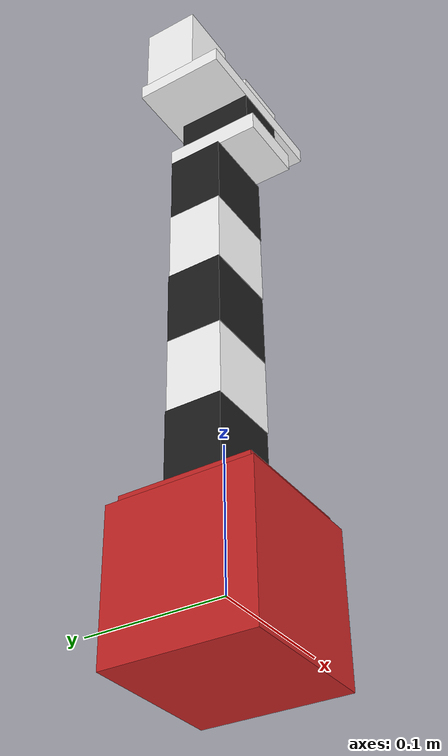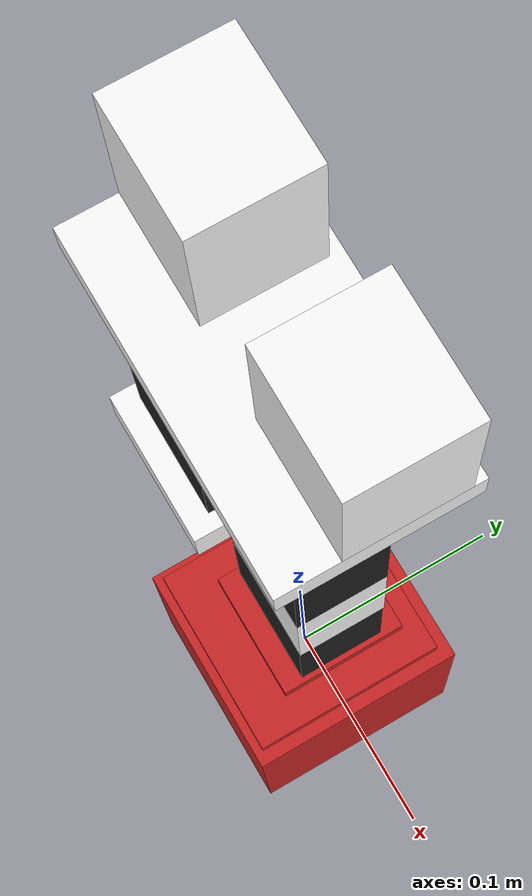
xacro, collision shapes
<?xml version="1.0"?>

<robot name="arm" xmlns:xacro="http://ros.org/wiki/xacro">

  <arg name="hardware_interface" default="PositionJointInterface"/>

  <xacro:include filename="$(find arm_description)/urdf/arm.gazebo.xacro" />

  <xacro:include filename="$(find arm_description)/urdf/arm.transmission.xacro" />

  <xacro:include filename="$(find arm_description)/urdf/camera.xacro" />

  <!-- BASE_ LINK -->
  <link name="base_link">
    <visual>
      <geometry>
        <mesh filename="package://arm_description/meshes/base_link.stl" scale="0.001 0.001 0.001"/>
      </geometry>
      <origin rpy="0 0 0" xyz="0 0 0"/>
    </visual>
    <collision>
      <geometry>
        <box size = "0.1 0.1 0.1" />
      </geometry>
      <origin rpy="0 0 0" xyz="0 0 0"/>
    </collision>
    <inertial>
      <mass value="0.1"/>
      <inertia ixx="1.06682889e+08" ixy="0.0" ixz="0.0" iyy="9.92165844e+07" iyz="0.0" izz="1.26939175e+08"/>
    </inertial>
  </link>

<!-- JOINT: BASE_1_2 -->
  <joint name="base_1_2" type="fixed">
    <parent link="base_link"/>
    <child link="base_turn"/>
    <origin xyz="-0.0011 -0.011 0.05"/>
  </joint>

<!-- BASE TURN -->
  <link name="base_turn">
    <visual>
      <geometry>
        <mesh filename="package://arm_description/meshes/base_turn.stl" scale="0.001 0.001 0.001"/>
      </geometry>
      <origin rpy="0 0 0" xyz="0 0 0"/>
    </visual>
    <collision>
      <geometry>
       <box size = "0.09 0.09 0.006" />
        </geometry>
       <origin rpy="0 0 0" xyz="0 0.01 0.003"/>
    </collision>
    <inertial>
      <mass value="0.1"/>
      <inertia ixx="1.35223008e+07" ixy="0.0" ixz="0.0" iyy="8.13814925e+06" iyz="0.0" izz="2.14903814e+07"/>
    </inertial>
  </link>

  <!-- JOINT: J0 -->
  <joint name="j0" type="revolute">
    <parent link="base_turn"/>
    <child link="base_turn_rot"/>
    <origin xyz="-0.0 0.0155 0.013" rpy = "0 0 -1.57"/>
    <axis xyz="0 0 1" />
    <limit effort="300" velocity="0.1" lower="-2.57" upper="2.57"/>
  </joint>

  <!-- BASE_TURN_ROT -->
  <link name="base_turn_rot">
    <visual>
      <geometry>
        <mesh filename="package://arm_description/meshes/base_turn_table_rot.stl" scale="0.001 0.001 0.001"/>
      </geometry>

    </visual>
    <collision>
      <geometry>
	 <box size = "0.06 0.06 0.007" />
        </geometry>
      <origin rpy="0 0 0" xyz="0 0 -0.003"/>
    </collision>

    <inertial>
      <mass value="0.1"/>
      <inertia ixx="3.41992001e+06" ixy="0.0" ixz="0.0" iyy="2.85587836e+06" iyz="0.0" izz="5.84313870e+06"/>
    </inertial>
  </link>

  <!-- JOINT: BASE_TURN_ROT_DYN2 -->
  <joint name="base_turn_rot_dyn2" type="fixed">
    <parent link="base_turn_rot"/>
    <child link="dyn2"/>
    <origin xyz="0 0 0.0385" rpy="0 1.57 1.57 "/>
  </joint>

  <link name="dyn2">
    <visual>
      <geometry>
        <mesh filename="package://arm_description/meshes/dyn.stl" scale="0.01 0.01 0.01"/>
      </geometry>

      <origin rpy="0 0 0" xyz="0 0 0"/>
    </visual>
    <collision>
      <geometry>
          <box size = "0.055 0.04 0.055" />
      </geometry>
        <origin rpy="0 0 0" xyz="0.011 0 0"/>
    </collision>
     <inertial>
      <mass value="0.1"/>
      <inertia ixx="6.90013881e+01" ixy="0.0" ixz="0.0" iyy="1.24554875e+02" iyz="0.0" izz="1.04295793e+02"/>
    </inertial>
  </link>

  <joint name="j1" type="revolute">
    <parent link="dyn2"/>
    <child link="dyn2_r"/>
    <origin xyz="0 0 0.0" rpy="0 0 0"/>
    <axis xyz="0 0 1" />
    <limit effort="300" velocity="0.1" lower="-3.14" upper="3.14"/>
  </joint>

  <link name="dyn2_r">

  </link>

  <joint name="dyn2_f4" type="fixed">
    <parent link="dyn2_r"/>
    <child link="f4"/>
    <origin xyz="-0.047 0.0 -0.003" rpy="0 1.57 1.57"/>
  </joint>

  <link name="f4">
    <visual>
      <geometry>
        <mesh filename="package://arm_description/meshes/f4_n_f3.stl" scale="0.001 0.001 0.001"/>
      </geometry>
      <origin rpy="0 0 0" xyz="0 0 0"/>
      <material name="white">
        <color rgba="1 1 1 1"/>
      </material>
    </visual>
    <collision>
      <geometry>
          <box size = "0.055 0.055 0.04" />
      </geometry>
      <origin rpy="0 0 0" xyz="-0.004 -0.003 0"/>
    </collision>
     <inertial>
      <mass value="0.1"/>
      <inertia ixx="6.90013881e+01" ixy="0.0" ixz="0.0" iyy="1.24554875e+02" iyz="0.0" izz="1.04295793e+02"/>
    </inertial>
  </link>

  <joint name="d4_dyn3" type="fixed">
    <parent link="f4"/>
    <child link="dyn3"/>
    <origin xyz="-0.004 0.0645 0 " rpy="-1.57 3.14 1.57"/>
  </joint>

  <link name="dyn3">
    <visual>
      <geometry>
        <mesh filename="package://arm_description/meshes/dyn.stl" scale="0.01 0.01 0.01"/>
      </geometry>
      <origin rpy="0 0 0" xyz="0 0 0"/>
    </visual>
    <collision>
      <geometry>
          <box size = "0.055 0.04 0.055" />
      </geometry>
        <origin rpy="0 0 0" xyz="0.0123 0 0"/>
    </collision>
     <inertial>
      <mass value="0.1"/>
      <inertia ixx="6.90013881e+01" ixy="0.0" ixz="0.0" iyy="1.24554875e+02" iyz="0.0" izz="1.04295793e+02"/>
    </inertial>
  </link>

  <joint name="j2" type="revolute">
    <parent link="dyn3"/>
    <child link="dyn3_r"/>
    <origin xyz="0 0 0.0" rpy="0 0 0"/>
    <axis xyz="0 0 1" />
    <limit effort="300" velocity="0.1" lower="-3.14" upper="3.14"/>
  </joint>

  <link name="dyn3_r">

  </link>

  <joint name="dyn3_f5" type="fixed">
    <parent link="dyn3_r"/>
    <child link="f5"/>
    <origin xyz="-0.046 -0.0 -0.002" rpy="1.57 1.57 3.1415 "/>
  </joint>

  <link name="f5">
    <visual>
      <geometry>
        <mesh filename="package://arm_description/meshes/f4_n_f3.stl" scale="0.001 0.001 0.001"/>
      </geometry>
      <origin rpy="0 0 0" xyz="0 0 0"/>
      <material name="white">
        <color rgba="1 1 1 1"/>
      </material>
    </visual>
    <collision>
      <geometry>
          <box size = "0.055 0.055 0.04" />
      </geometry>
      <origin rpy="0 0 0" xyz="-0.003 -0.003 0"/>
    </collision>

    <inertial>
      <mass value="0.1"/>
      <inertia ixx="1.13130695e+07" ixy="0.0" ixz="0.0" iyy="8.78052401e+06" iyz="0.0" izz="1.72940286e+07"/>
    </inertial>
  </link>

  <joint name="f5_dyn4" type="fixed">
    <parent link="f5"/>
    <child link="dyn4"/>
    <origin xyz="-0.004 0.065 -0.0" rpy="-1.57 3.1415 1.57 "/>
  </joint>

  <link name="dyn4">
    <visual>
      <geometry>
        <mesh filename="package://arm_description/meshes/dyn.stl" scale="0.01 0.01 0.01"/>
      </geometry>

      <origin rpy="0 0 0" xyz="0 0 0"/>
    </visual>
    <collision>
      <geometry>
          <box size = "0.055 0.04 0.055" />
      </geometry>
        <origin rpy="0 0 0" xyz="0.013 0 0"/>
    </collision>

    <inertial>
      <mass value="0.1"/>
      <inertia ixx="6.90013881e+01" ixy="0.0" ixz="0.0" iyy="1.24554875e+02" iyz="0.0" izz="1.04295793e+02"/>
    </inertial>
  </link>

  <joint name="j3" type="revolute">
    <parent link="dyn4"/>
    <child link="dyn4_r"/>
    <origin xyz="0 0 0.0" rpy="0 0 0"/>
    <axis xyz="0 0 1" />
    <limit effort="300" velocity="0.1" lower="-3.14" upper="3.14"/>
  </joint>

  <link name="dyn4_r">

  </link>

  <joint name="f5_wrist" type="fixed">
    <parent link="dyn4_r"/>
    <child link="wrist"/>
    <origin xyz="-0.017 -0.013 0.003" rpy="1.57 1.57 -1.57"/>
  </joint>

  <link name="wrist">
    <visual>
      <geometry>
        <mesh filename="package://arm_description/meshes/wrist.stl" scale="0.001 0.001 0.001"/>
      </geometry>
      <origin rpy="0 0 0" xyz="0 0 0"/>
      <material name="white">
        <color rgba="1 1 1 1"/>
      </material>
    </visual>
    <collision>
      <geometry>
        <box size = "0.05 0.07 0.015" />
      </geometry>
        <origin rpy="0 0 0" xyz="0.0035 0 0.005"/>
    </collision>

     <inertial>
      <mass value="0.1"/>
      <inertia ixx="6.90013881e+01" ixy="0.0" ixz="0.0" iyy="1.24554875e+02" iyz="0.0" izz="1.04295793e+02"/>
    </inertial>
  </link>

  <joint name="wrist_dyn5" type="fixed">
    <parent link="wrist"/>
    <child link="dyn5"/>
    <origin xyz="0.0038 -0.013 0.0275" rpy="0 0 1.57"/>
  </joint>

    <link name="dyn5">
    <visual>
      <geometry>
        <mesh filename="package://arm_description/meshes/dyn.stl" scale="0.01 0.01 0.01"/>
      </geometry>
      <origin rpy="0 0 0" xyz="0 0 0"/>
    </visual>
    <collision>
      <geometry>
          <box size = "0.055 0.04 0.028" />
      </geometry>
      <origin rpy="0 0 0" xyz="0.0129 0 -0.0012"/>
    </collision>

    <inertial>
      <mass value="0.1"/>
      <inertia ixx="6.90013881e+01" ixy="0.0" ixz="0.0" iyy="1.24554875e+02" iyz="0.0" izz="1.04295793e+02"/>
    </inertial>
  </link>

  <joint name="dyn5_dyn5_r" type="fixed">
    <parent link="dyn5"/>
    <child link="dyn5_r"/>
    <origin xyz="0 0 0.0" rpy="0 0 0"/>
    <axis xyz="0 0 1" />
    <limit effort="300" velocity="0.1" lower="-3.14" upper="3.14"/>
  </joint>

  <link name="dyn5_r">

  </link>

  <joint name="wrist_rotate_dyn5" type="fixed">
    <parent link="dyn5_r"/>
    <child link="crawer_base"/>
    <origin xyz="0.015 0 0.019" rpy="0 0 1.57"/>
  </joint>

  <link name="crawer_base">
    <visual>
      <geometry>
        <mesh filename="package://arm_description/meshes/the_crawer_base.stl" scale="0.001 0.001 0.001"/>
      </geometry>
      <origin rpy="0 0 0" xyz="0 0 0"/>
      <material name="white">
        <color rgba="1 1 1 1"/>
      </material>
    </visual>
    <collision>
      <geometry>
          <box size = "0.12 0.065 0.012" />
        </geometry>
      <origin rpy="0 0 0" xyz="0 0.007 0"/>
    </collision>

    <inertial>
      <mass value="0.1"/>
      <inertia ixx="6.90013881e+01" ixy="0.0" ixz="0.0" iyy="1.24554875e+02" iyz="0.0" izz="1.04295793e+02"/>
    </inertial>
  </link>

  <joint name="crawer_base_crawer_left" type="fixed">
    <parent link="crawer_base"/>
    <child link="crawer_left"/>
    <origin xyz="-0.03 0.015 0.01" rpy="0 -1.57 0"/>
  </joint>

  <link name="crawer_left">
    <visual>
      <geometry>
        <mesh filename="package://arm_description/meshes/the_crawer.stl" scale="0.001 0.001 0.001"/>
      </geometry>
      <origin rpy="0 0 0" xyz="0 0 0"/>
      <material name="white">
        <color rgba="1 1 1 1"/>
      </material>
    </visual>
    <collision>
      <geometry>
          <box size = "0.055 0.04 0.045" />
          </geometry>
        <origin rpy="0 0 0" xyz="0.023 0 0.0075"/>
    </collision>

    <inertial>
      <mass value="0.1"/>
      <inertia ixx="6.90013881e+01" ixy="0.0" ixz="0.0" iyy="1.24554875e+02" iyz="0.0" izz="1.04295793e+02"/>
    </inertial>
  </link>

  <joint name="crawer_base_crawer_right" type="fixed">
    <parent link="crawer_base"/>
    <child link="crawer_right"/>
    <origin xyz="0.03 0.015 0.01" rpy="3.1415 -1.57 0"/>
  </joint>

  <link name="crawer_right">
    <visual>
      <geometry>
        <mesh filename="package://arm_description/meshes/the_crawer.stl" scale="0.001 0.001 0.001"/>
      </geometry>
      <origin rpy="0 0 0" xyz="0 0 0"/>
      <material name="white">
        <color rgba="1 1 1 1"/>
      </material>
    </visual>
    <collision>
      <geometry>
          <box size = "0.055 0.04 0.045" />
          </geometry>
        <origin rpy="0 0 0" xyz="0.023 0 0.0075"/>
    </collision>

    <inertial>
      <mass value="0.1"/>
      <inertia ixx="6.90013881e+01" ixy="0.0" ixz="0.0" iyy="1.24554875e+02" iyz="0.0" izz="1.04295793e+02"/>
    </inertial>
  </link>

  <xacro:arm_gazebo />

  <xacro:arm_transmission hardware_interface="$(arg hardware_interface)"/>

  <xacro:camera />
</robot>

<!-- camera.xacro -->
<robot xmlns:xacro="http://www.ros.org/wiki/xacro" name="camera">

    <xacro:macro name="camera">
    <xacro:property name="camera_link" value="0.025" /> <!-- Size of camera box-->

     <!-- CAMERA_JOINT -->
  	<joint name="camera_joint" type="fixed">

             <origin rpy="0 0 0" xyz="0 0 ${camera_link}"/>
   	      <parent link="base_link"/>
             <child link="camera_link"/>
       </joint>

     <!-- CAMERA_LINK -->
  <link name="camera_link">
    <visual>
      <origin xyz="0 0 0" rpy="0 0 0" />
      <geometry>
      <box size = "${camera_link} ${camera_link} ${camera_link}" />
     </geometry>
     <material name="Blue">
	<color rgba="0 0 1 1"/>
     </material>
    </visual>

   <collision>
      <origin xyz="0 0 0" rpy="0 0 0"/>
      <geometry>
	<box size="${camera_link} ${camera_link} ${camera_link}"/>
      </geometry>
   </collision>

   <inertial>
      <mass value="1e-5"/>
      <origin xyz="0 0 0" rpy="0 0 0"/>
      <inertia ixx="1e-6" ixy="0.0" ixz="0.0" iyy="1e-6" iyz="0.0" izz="1e-6"/>
    </inertial>

  </link>

  <!-- Camera -->
    <gazebo reference="camera_link">
    	<material>Gazebo/Blue</material>
	<sensor type="camera" name="camera1">
	  <update_rate>30.0</update_rate>
	  <camera name="head">
	    <horizontal_fov>1.3962634</horizontal_fov>
	    <image>
	      <width>800</width>
	      <height>800</height>
	      <format>R8G8B8</format>
	    </image>
	    <clip>
	      <near>0.02</near>
	      <far>300</far>
	    </clip>
	    <noise>
	     <type>gaussian</type>
	     <mean>0.0</mean>
	     <stddev>0.007</stddev>
	    </noise>
	  </camera>
	  <plugin name="camera_controller" filename="libgazebo_ros_camera.so">
		<alwaysOn>true</alwaysOn>
		<updateRate>0.0</updateRate>
		<cameraName>camera</cameraName>
		<imageTopicName>image_raw</imageTopicName>
		<cameraInfoTopicName>camera_info</cameraInfoTopicName>
		<frameName>camera_link</frameName>
		<hackBaseline>0.07</hackBaseline>
		<distortionK1>0.0</distortionK1>
		<distortionK2>0.0</distortionK2>
		<distortionK3>0.0</distortionK3>
		<distortionT1>0.0</distortionT1>
		<distortionT2>0.0</distortionT2>
		<CxPrime>0</CxPrime>
		<Cx>0.0</Cx>
		<Cy>0.0</Cy>
		<focalLength>0.0</focalLength>
	  </plugin>
	</sensor>
    </gazebo>

    </xacro:macro>

</robot>
